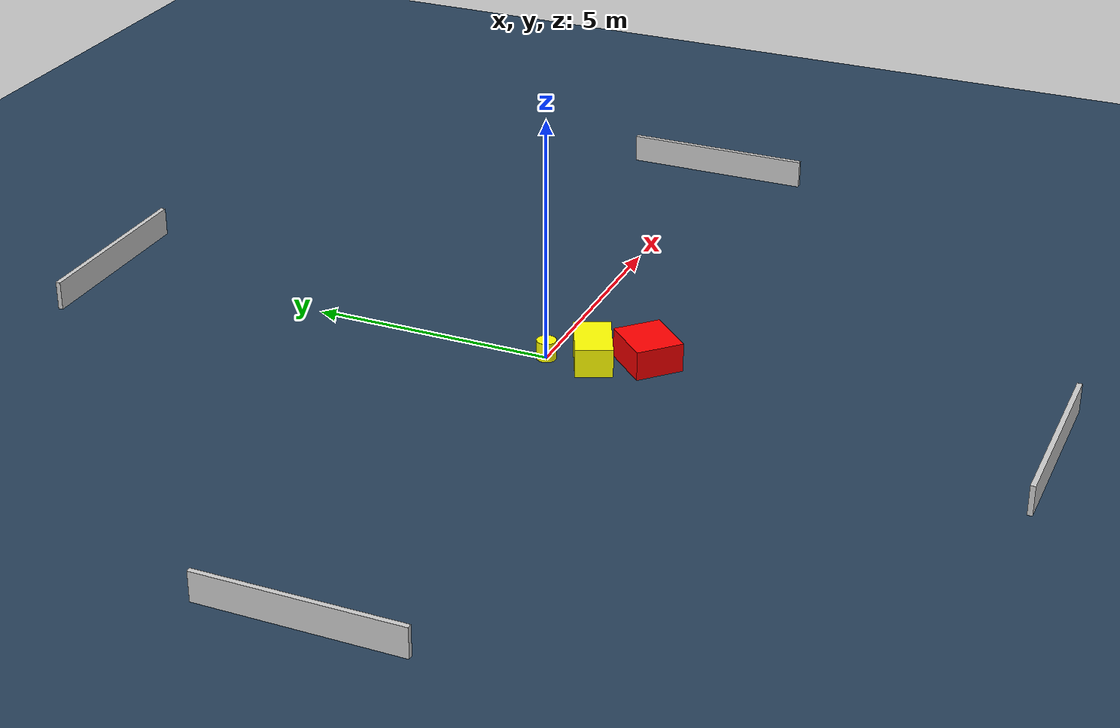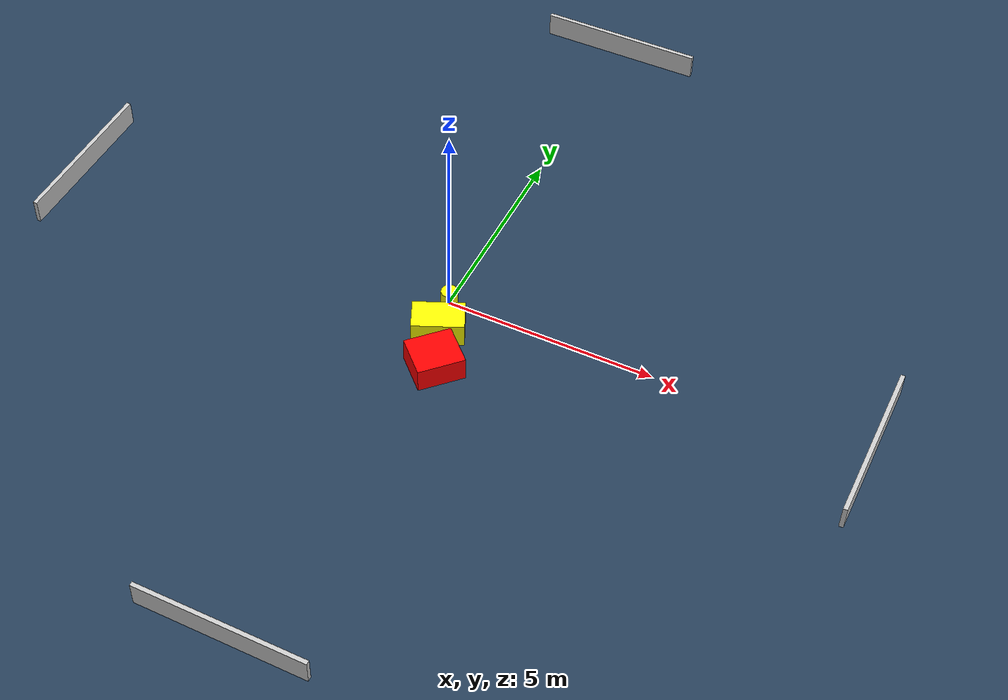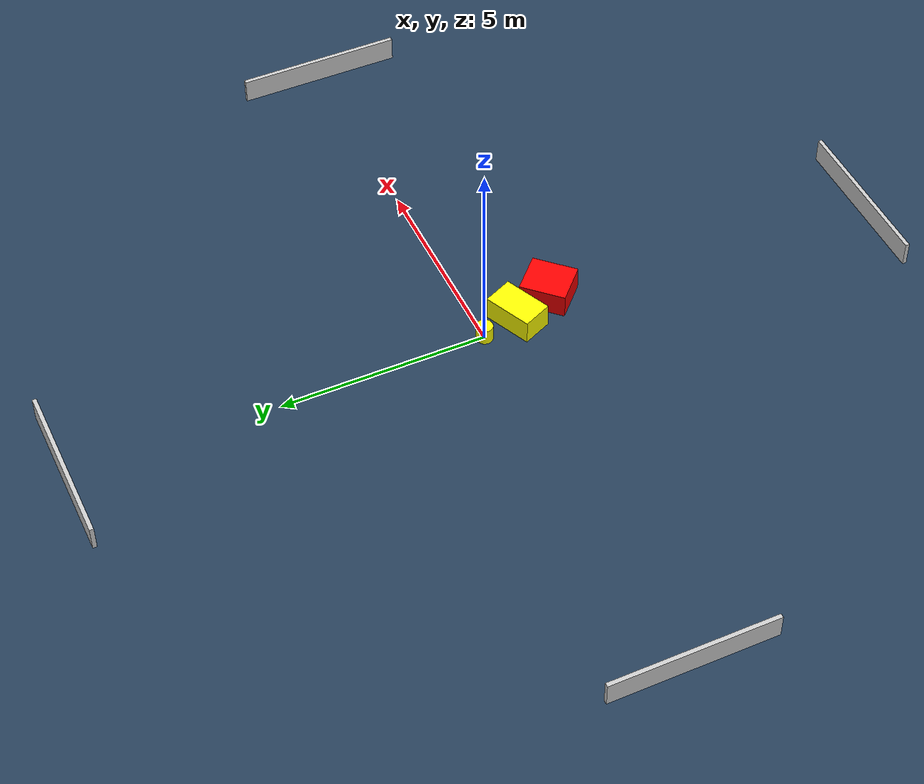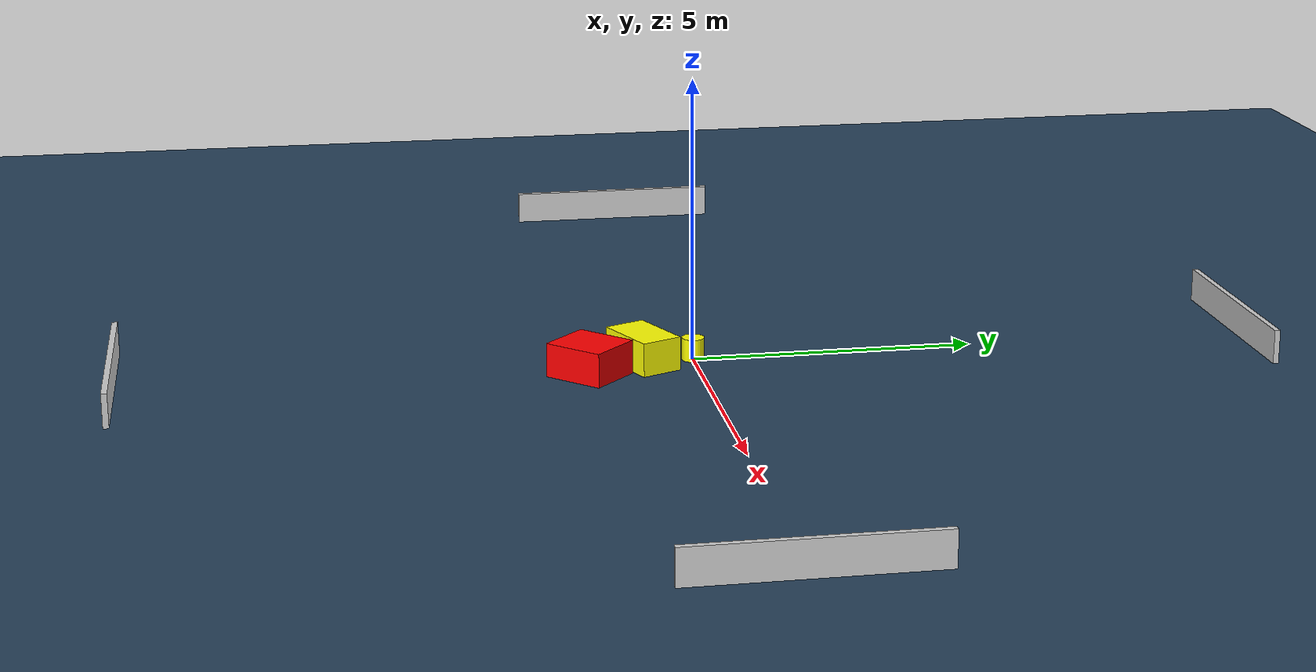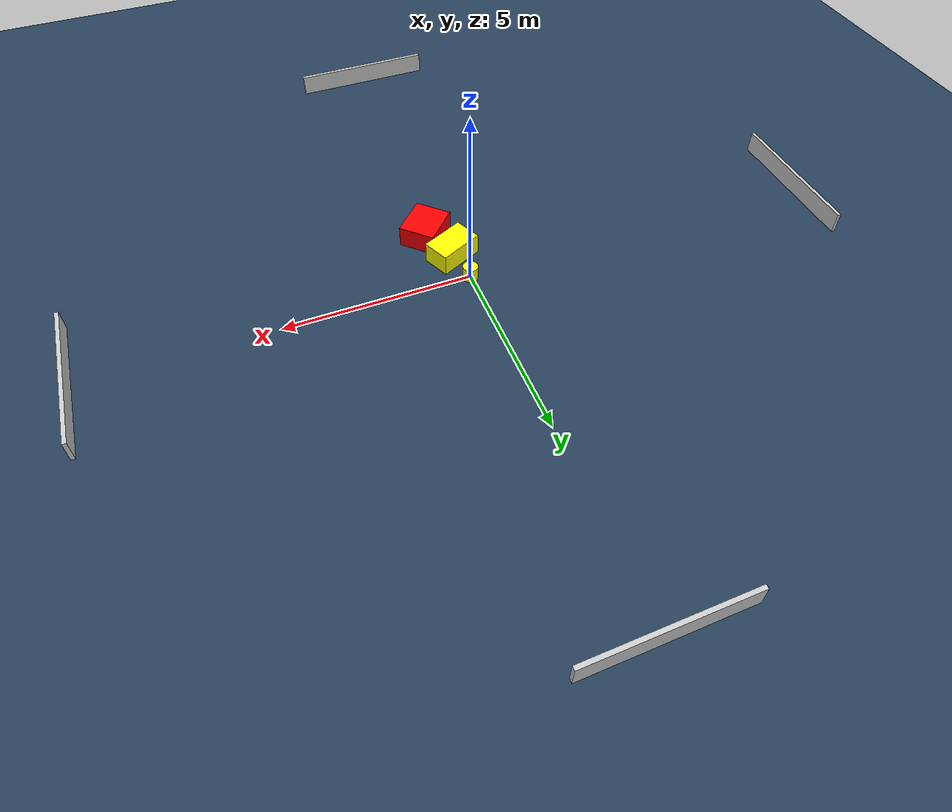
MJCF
<?xml version="1.0" ?>
<mujoco model="generated_environment">
  <option timestep="0.01" integrator="RK4" cone="elliptic"/>
  <default>
    <geom density="1"/>
  </default>
  <asset>
    <texture builtin="gradient" height="3072" name="skybox" rgb1="0.3 0.5 0.7" rgb2="0 0 0" type="skybox" width="512"/>
    <texture builtin="checker" height="300" name="groundplane" rgb1="0.2 0.3 0.4" rgb2="0.1 0.2 0.3" type="2d" width="300"/>
    <material name="groundplane" reflectance="0.2" texrepeat="5 5" texture="groundplane"/>
  </asset>
  <worldbody>
    <light dir="0 0 -1" directional="true" pos="0 0 1.5"/>
    <geom condim="3" friction="0.5 0.005 0.001" material="groundplane" name="floor" pos="0 0 0" size="0 0 0.05" type="plane"/>
    <body name="walls">
      <geom name="wall_1" condim="4" pos="-10.0 0.0 0.3" rgba="0.800000011920929 0.800000011920929 0.800000011920929 1.0" size="0.05 2.0 0.3" type="box"/>
      <geom name="wall_2" condim="4" pos="10.0 0.0 0.3" rgba="0.800000011920929 0.800000011920929 0.800000011920929 1.0" size="0.05 2.0 0.3" type="box"/>
      <geom name="wall_3" condim="4" pos="0.0 -10.0 0.3" rgba="0.800000011920929 0.800000011920929 0.800000011920929 1.0" size="2.0 0.05 0.3" type="box"/>
      <geom name="wall_4" condim="4" pos="0.0 10.0 0.3" rgba="0.800000011920929 0.800000011920929 0.800000011920929 1.0" size="2.0 0.05 0.3" type="box"/>
    </body>
    <body name="robot">
      <joint name="joint_x" type="slide" pos="0 0 0" axis="1 0 0"/>
      <joint name="joint_y" type="slide" pos="0 0 0" axis="0 1 0"/>
      <geom name="robot" type="cylinder" pos="0.0 0.0 0.2" size="0.2 0.2 0.0" mass="5.0" friction="1.0 0.005 0.0001" condim="4" rgba="1.0 1.0 0.0 1.0"/>
    </body>
    <body name="obstacle_1_movable">
      <geom name="obstacle_1_movable" condim="4" pos="0.17074004091285888 -0.9128011148332275 0.3" euler="0 0 24.244129130275105" friction="0.0 0.005 0.001" rgba="1.0 1.0 0.0 1.0" size="0.603863148882773 0.37370723943946815 0.3" type="box" mass="0.1"/>
      <joint type="free"/>
    </body>
    <body name="obstacle_2_static">
      <geom name="obstacle_2_static" condim="4" pos="0.5812408582113857 -1.9058562082687713 0.3" euler="0 0 135.87017958373028" friction="0.0 0.005 0.001" rgba="1.0 0.0 0.0 1.0" size="0.49519129274678625 0.5563633135140557 0.3" type="box"/>
    </body>
  </worldbody>
  <actuator>
    <motor name="actuator_x" joint="joint_x" gear="1" ctrlrange="-1 1"/>
    <motor name="actuator_y" joint="joint_y" gear="1" ctrlrange="-1 1"/>
  </actuator>
</mujoco>
